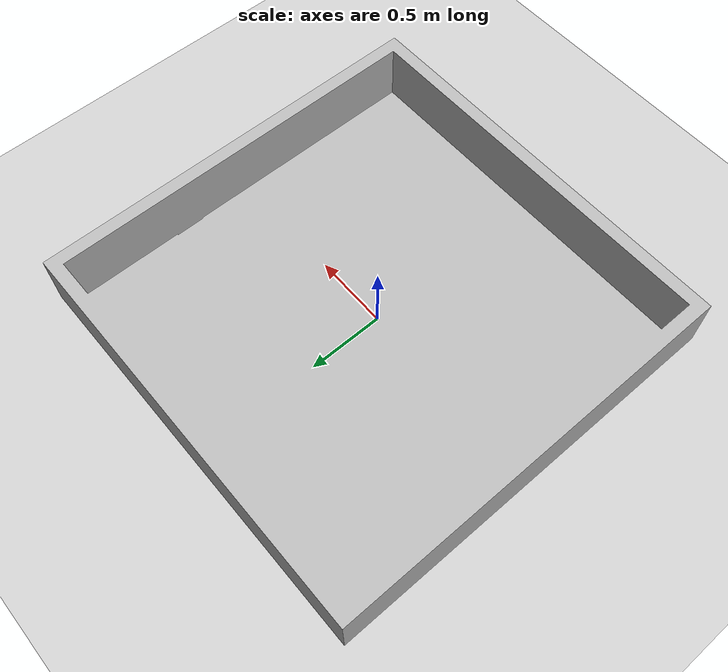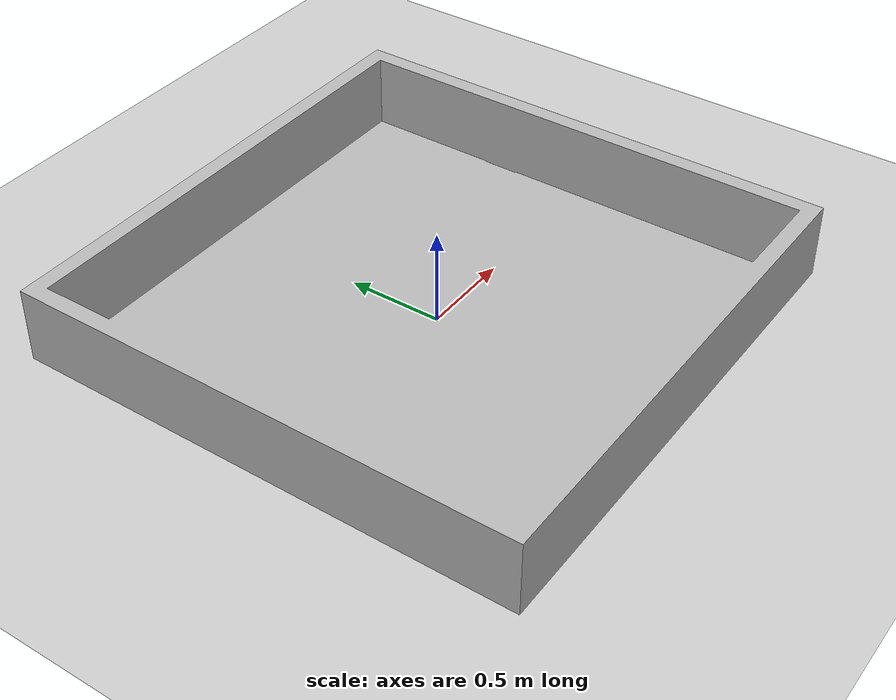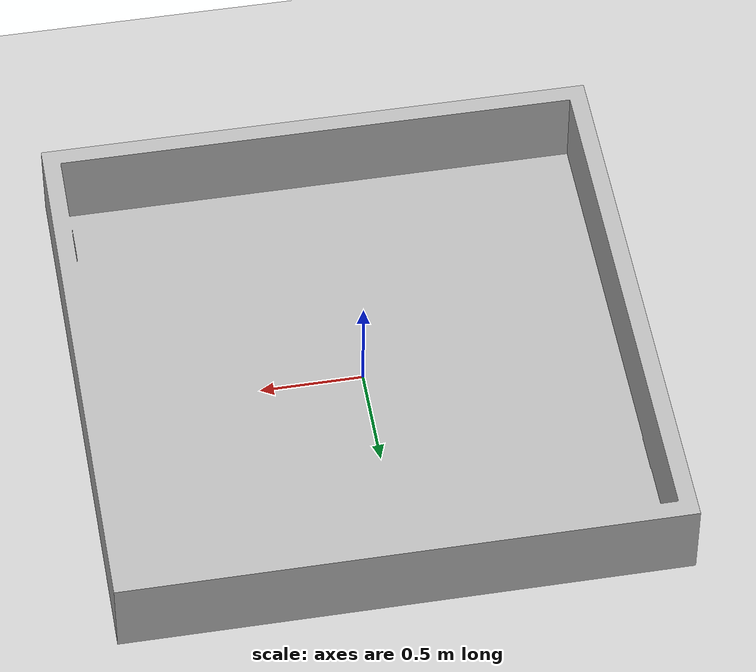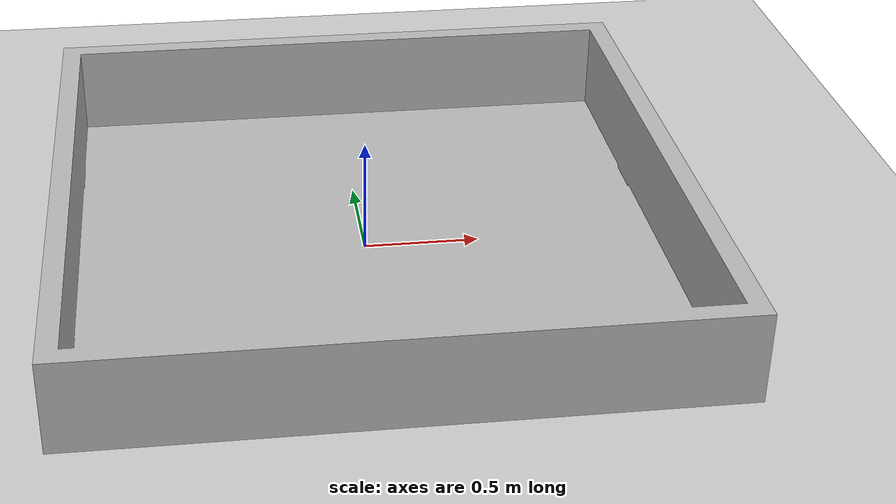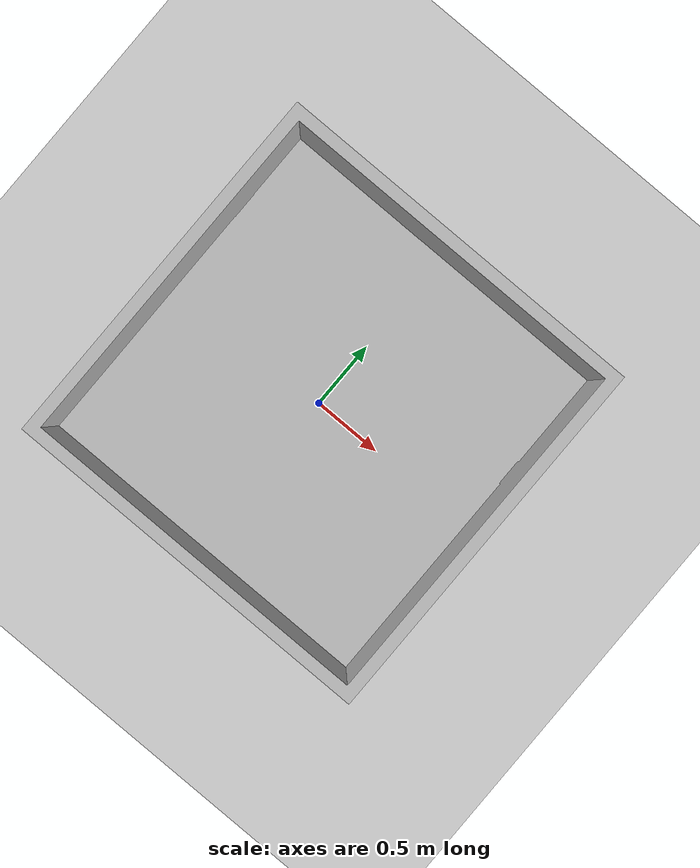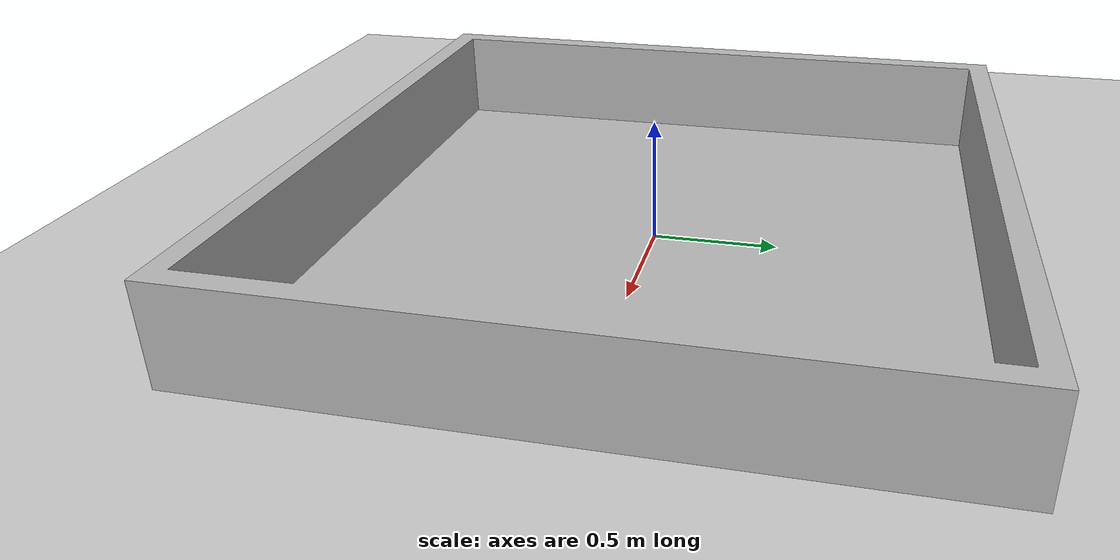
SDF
<?xml version="1.0" ?>
<sdf version="1.5">
  <world name="default">

    <include>
      <uri>model://sun</uri>
      <pose>0 0 10 0 0 0</pose>
    </include>
    <include>
      <uri>model://ground_plane</uri>
    </include>

    <include>
      <uri>model://particle_room</uri>
      <pose>0 0 0.2 0 0 0</pose>
    </include>

    <physics type="ode">
      <real_time_update_rate>1000.0</real_time_update_rate>
      <max_step_size>0.001</max_step_size>
      <real_time_factor>1</real_time_factor>
    </physics>
    <scene>
  <ambient>0.4 0.4 0.4 1.0</ambient> <background>0.3 0.3 0.3 1.0</background>
  <shadows>true</shadows>
   </scene>
    </world>

</sdf>

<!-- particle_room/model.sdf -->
<sdf version="1.6">
  <model name="particle_room">
    <static>true</static>
    <link name="link">
      <collision name="collision">
        <geometry>
          <mesh>
            <uri>model://particle_room/meshes/particle_room.dae</uri>
            <scale>1.2 1.2 1.2</scale>
          </mesh>
        </geometry>
      </collision>
      <visual name="visual">
        <geometry>
          <mesh>
            <uri>model://particle_room/meshes/particle_room.dae</uri>
            <scale>1.2 1.2 1.2</scale>
          </mesh>
        </geometry>
      </visual>
    </link>
  </model>
</sdf>
